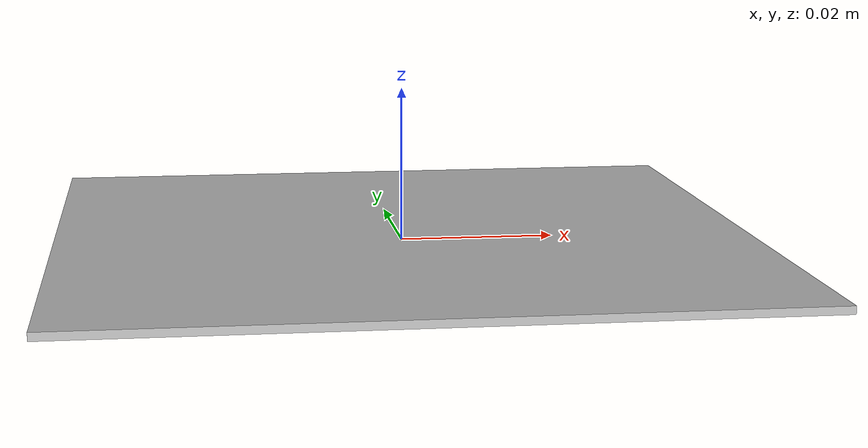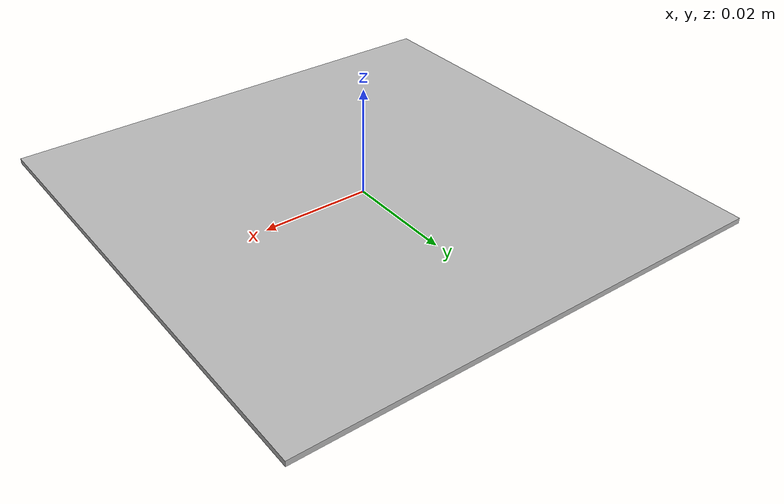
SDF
<sdf version="1.5">
  <model name="Marker ID-0">
    <static>true</static>
    <link name="link">
      <pose>0.0 0.0 0.0005 0.0 0.0 0.0</pose>
      <collision name="collision">
        <geometry>
          <!-- Box or plane geometry is used -->
        <box><size>0.09 0.09 0.001</size></box></geometry>
      </collision>
      <visual name="visual">
        <geometry>
          <!-- Box or plane geometry is used -->
        <box><size>0.09 0.09 0.001</size></box></geometry>
        <material>
          <script>
            <name>marker_id_0</name>
          <uri>model://marker_0/materials/scripts/</uri><uri>model://marker_0/materials/textures/</uri></script>
        </material>
      </visual>
    </link>
  </model>
</sdf>
